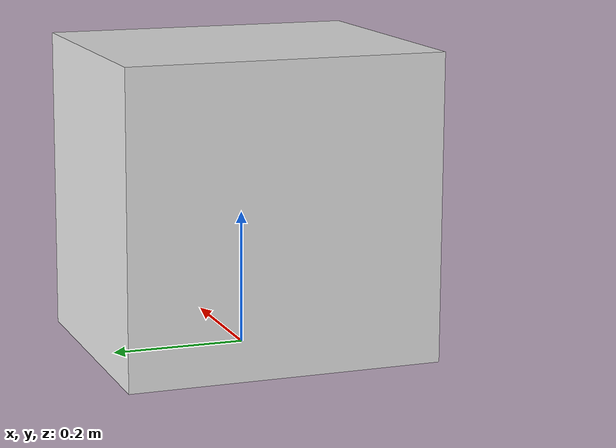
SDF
<?xml version="1.0"?>
<sdf version="1.6">
  <model name="rwc2015/bedstand">
    <link name="1_link">
      <collision name="1_col">
        <geometry>
          <box>
            <size>0.4 0.47 0.455</size>
          </box>
        </geometry>
        <pose>0.0 0.0 0.2275 0 0 0</pose>
      </collision>
      <visual name="1_vis">
        <geometry>
          <box>
            <size>0.4 0.47 0.455</size>
          </box>
        </geometry>
        <material>
          <ambient>0.9 0.9 0.9 1</ambient>
        </material>
        <pose>0.0 0.0 0.2275 0 0 0</pose>
      </visual>
      <pose>0 0 0 0 0 0</pose>
    </link>
    <link name="in_front_of">
      <virtual_volume name="in_front_of_vv">
        <geometry>
          <box>
            <size>0.8 1.0 1</size>
          </box>
        </geometry>
        <pose>-0.6 0.0 0.5 0 0 0</pose>
      </virtual_volume>
    </link>
    <static>true</static>
  </model>
</sdf>
